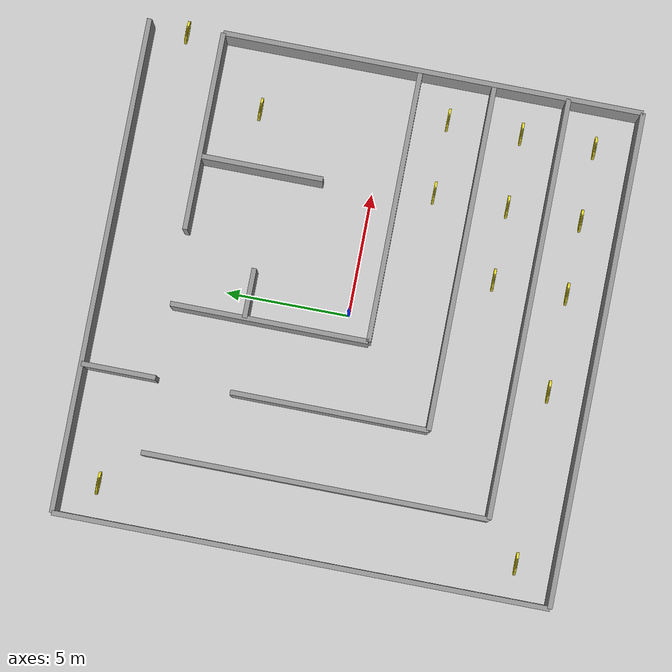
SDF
<?xml version="1.0" ?>
<sdf version="1.4">
  <world name="maze">
    <physics type="ode">
      <gravity>0 0 -9.81</gravity>
      <ode>
        <solver>
          <type>quick</type>
          <iters>50</iters>
          <sor>1.4</sor>
        </solver>
        <constraints>
          <cfm>0.0</cfm>
          <erp>0.2</erp>
          <contact_max_correcting_vel>100.0</contact_max_correcting_vel>
          <contact_surface_layer>0.0</contact_surface_layer>
        </constraints>
      </ode>
      <real_time_update_rate>1000</real_time_update_rate>
      <max_step_size>0.001</max_step_size>
    </physics>
    <scene>
      <ambient>0.3 0.3 0.3 1.0</ambient>
    </scene>
    <!-- Focus camera on the maze -->
    <gui fullscreen='0'>
      <camera name='user_camera'>
        <pose>0 0 35 0 1.570796327 0</pose>
        <view_controller>orbit</view_controller>
      </camera>
    </gui>
    <!-- Light Source -->
    <light type="directional" name="sun">
      <cast_shadows>true</cast_shadows>
      <pose>0 0 100 0 0 0</pose>
      <diffuse>0.9 0.9 0.9 1</diffuse>
      <specular>0.1 0.1 0.1 1</specular>
      <attenuation>
        <range>1000</range>
        <constant>0.9</constant>
        <linear>0.01</linear>
        <quadratic>0.001</quadratic>
      </attenuation>
      <direction>-0.2 0.0 -1.0</direction>
    </light>
    <!-- Point Light Source -->
    <light type="point" name="light_bulb">
      <cast_shadows>false</cast_shadows>
      <pose>0 0 10 0 0 0</pose>
      <diffuse>0.5 0.5 0.5 1</diffuse>
      <specular>0.0 0.0 0.0 1</specular>
      <attenuation>
        <range>80</range>
        <constant>0.9</constant>
        <linear>0.01</linear>
        <quadratic>0.001</quadratic>
      </attenuation>
    </light>
    <!-- A ground plane -->
    <include>
      <uri>model://ground_plane</uri>
      <pose>0 0 0 0 0 0</pose>
    </include>
    <!-- The the maze -->
    <include>
      <uri>model://crazy_maze</uri>
      <pose>0 0 0 0 0 0</pose>
    </include>
    <!-- The coins -->
    <include>
      <uri>model://crazy_coins</uri>
      <pose>0 0 0 0 0 0</pose>
    </include>
  </world>
</sdf>

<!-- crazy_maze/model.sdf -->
<sdf version='1.9'>
  <model name='crazy_maze'>
    <static>1</static>
    <link name='Wall_0'>
      <pose>-10 -10 0 0 0 1.570796327</pose>
      <collision name='Wall_0_Collision'>
        <pose>10 0 1.25 0 0 0</pose>
        <geometry>
          <box>
            <size>20 0.2 2.5</size>
          </box>
        </geometry>
      </collision>
      <visual name='Wall_0_Visual'>
        <pose>10 0 1.25 0 0 0</pose>
        <geometry>
          <box>
            <size>20 0.2 2.5</size>
          </box>
        </geometry>
        <material>
          <script>
            <uri>file://media/materials/scripts/gazebo.material</uri>
            <name>Gazebo/Grey</name>
          </script>
        </material>
      </visual>
    </link>

    <link name='Wall_1'>
      <pose>-10 -10 0 0 0 0</pose>
      <collision name='Wall_1_Collision'>
        <pose>10 0 1.25 0 0 0</pose>
        <geometry>
          <box>
            <size>20 0.2 2.5</size>
          </box>
        </geometry>
      </collision>
      <visual name='Wall_1_Visual'>
        <pose>10 0 1.25 0 0 0</pose>
        <geometry>
          <box>
            <size>20 0.2 2.5</size>
          </box>
        </geometry>
        <material>
          <script>
            <uri>file://media/materials/scripts/gazebo.material</uri>
            <name>Gazebo/Grey</name>
          </script>
        </material>
      </visual>
    </link>

    <link name='Wall_2'>
      <pose>10 -10 0 0 0 1.570796327</pose>
      <collision name='Wall_2_Collision'>
        <pose>8.5 0 1.25 0 0 0</pose>
        <geometry>
          <box>
            <size>17 0.2 2.5</size>
          </box>
        </geometry>
      </collision>
      <visual name='Wall_2_Visual'>
        <pose>8.5 0 1.25 0 0 0</pose>
        <geometry>
          <box>
            <size>17 0.2 2.5</size>
          </box>
        </geometry>
        <material>
          <script>
            <uri>file://media/materials/scripts/gazebo.material</uri>
            <name>Gazebo/Grey</name>
          </script>
        </material>
      </visual>
    </link>

    <link name='Wall_3'>
      <pose>-10 10 0 0 0 0</pose>
      <collision name='Wall_3_Collision'>
        <pose>10 0 1.25 0 0 0</pose>
        <geometry>
          <box>
            <size>20 0.2 2.5</size>
          </box>
        </geometry>
      </collision>
      <visual name='Wall_3_Visual'>
        <pose>10 0 1.25 0 0 0</pose>
        <geometry>
          <box>
            <size>20 0.2 2.5</size>
          </box>
        </geometry>
        <material>
          <script>
            <uri>file://media/materials/scripts/gazebo.material</uri>
            <name>Gazebo/Grey</name>
          </script>
        </material>
      </visual>
    </link>

    <link name='Wall_4'>
      <pose>-7 -7 0 0 0 0</pose>
      <collision name='Wall_4_Collision'>
        <pose>8.5 0 1.25 0 0 0</pose>
        <geometry>
          <box>
            <size>17 0.2 2.5</size>
          </box>
        </geometry>
      </collision>
      <visual name='Wall_4_Visual'>
        <pose>8.5 0 1.25 0 0 0</pose>
        <geometry>
          <box>
            <size>17 0.2 2.5</size>
          </box>
        </geometry>
        <material>
          <script>
            <uri>file://media/materials/scripts/gazebo.material</uri>
            <name>Gazebo/Grey</name>
          </script>
        </material>
      </visual>
    </link>

    <link name='Wall_5'>
      <pose>-7 -7 0 0 0 1.570796327</pose>
      <collision name='Wall_5_Collision'>
        <pose>7 0 1.25 0 0 0</pose>
        <geometry>
          <box>
            <size>14 0.2 2.5</size>
          </box>
        </geometry>
      </collision>
      <visual name='Wall_5_Visual'>
        <pose>7 0 1.25 0 0 0</pose>
        <geometry>
          <box>
            <size>14 0.2 2.5</size>
          </box>
        </geometry>
        <material>
          <script>
            <uri>file://media/materials/scripts/gazebo.material</uri>
            <name>Gazebo/Grey</name>
          </script>
        </material>
      </visual>
    </link>

    <link name='Wall_6'>
      <pose>-4 -4 0 0 0 0</pose>
      <collision name='Wall_6_Collision'>
        <pose>7 0 1.25 0 0 0</pose>
        <geometry>
          <box>
            <size>14 0.2 2.5</size>
          </box>
        </geometry>
      </collision>
      <visual name='Wall_6_Visual'>
        <pose>7 0 1.25 0 0 0</pose>
        <geometry>
          <box>
            <size>14 0.2 2.5</size>
          </box>
        </geometry>
        <material>
          <script>
            <uri>file://media/materials/scripts/gazebo.material</uri>
            <name>Gazebo/Grey</name>
          </script>
        </material>
      </visual>
    </link>

    <link name='Wall_7'>
      <pose>-4 -4 0 0 0 1.570796327</pose>
      <collision name='Wall_7_Collision'>
        <pose>4 0 1.25 0 0 0</pose>
        <geometry>
          <box>
            <size>8 0.2 2.5</size>
          </box>
        </geometry>
      </collision>
      <visual name='Wall_7_Visual'>
        <pose>4 0 1.25 0 0 0</pose>
        <geometry>
          <box>
            <size>8 0.2 2.5</size>
          </box>
        </geometry>
        <material>
          <script>
            <uri>file://media/materials/scripts/gazebo.material</uri>
            <name>Gazebo/Grey</name>
          </script>
        </material>
      </visual>
    </link>

    <link name='Wall_8'>
      <pose>-1 -1 0 0 0 0</pose>
      <collision name='Wall_8_Collision'>
        <pose>5.5 0 1.25 0 0 0</pose>
        <geometry>
          <box>
            <size>11 0.2 2.5</size>
          </box>
        </geometry>
      </collision>
      <visual name='Wall_8_Visual'>
        <pose>5.5 0 1.25 0 0 0</pose>
        <geometry>
          <box>
            <size>11 0.2 2.5</size>
          </box>
        </geometry>
        <material>
          <script>
            <uri>file://media/materials/scripts/gazebo.material</uri>
            <name>Gazebo/Grey</name>
          </script>
        </material>
      </visual>
    </link>

    <link name='Wall_9'>
      <pose>-1 -1 0 0 0 1.570796327</pose>
      <collision name='Wall_9_Collision'>
        <pose>4 0 1.25 0 0 0</pose>
        <geometry>
          <box>
            <size>8 0.2 2.5</size>
          </box>
        </geometry>
      </collision>
      <visual name='Wall_9_Visual'>
        <pose>4 0 1.25 0 0 0</pose>
        <geometry>
          <box>
            <size>8 0.2 2.5</size>
          </box>
        </geometry>
        <material>
          <script>
            <uri>file://media/materials/scripts/gazebo.material</uri>
            <name>Gazebo/Grey</name>
          </script>
        </material>
      </visual>
    </link>

    <link name='Wall_10'>
      <pose>-4 7 0 0 0 1.570796327</pose>
      <collision name='Wall_10_Collision'>
        <pose>1.5 0 1.25 0 0 0</pose>
        <geometry>
          <box>
            <size>3 0.2 2.5</size>
          </box>
        </geometry>
      </collision>
      <visual name='Wall_10_Visual'>
        <pose>1.5 0 1.25 0 0 0</pose>
        <geometry>
          <box>
            <size>3 0.2 2.5</size>
          </box>
        </geometry>
        <material>
          <script>
            <uri>file://media/materials/scripts/gazebo.material</uri>
            <name>Gazebo/Grey</name>
          </script>
        </material>
      </visual>
    </link>

    <link name='Wall_11'>
      <pose>-1 4 0 0 0 0</pose>
      <collision name='Wall_11_Collision'>
        <pose>1 0 1.25 0 0 0</pose>
        <geometry>
          <box>
            <size>2 0.2 2.5</size>
          </box>
        </geometry>
      </collision>
      <visual name='Wall_11_Visual'>
        <pose>1 0 1.25 0 0 0</pose>
        <geometry>
          <box>
            <size>2 0.2 2.5</size>
          </box>
        </geometry>
        <material>
          <script>
            <uri>file://media/materials/scripts/gazebo.material</uri>
            <name>Gazebo/Grey</name>
          </script>
        </material>
      </visual>
    </link>

    <link name='Wall_12'>
      <pose>2 7 0 0 0 0</pose>
      <collision name='Wall_12_Collision'>
        <pose>4 0 1.25 0 0 0</pose>
        <geometry>
          <box>
            <size>8 0.2 2.5</size>
          </box>
        </geometry>
      </collision>
      <visual name='Wall_12_Visual'>
        <pose>4 0 1.25 0 0 0</pose>
        <geometry>
          <box>
            <size>8 0.2 2.5</size>
          </box>
        </geometry>
        <material>
          <script>
            <uri>file://media/materials/scripts/gazebo.material</uri>
            <name>Gazebo/Grey</name>
          </script>
        </material>
      </visual>
    </link>

    <link name='Wall_13'>
      <pose>5 2 0 0 0 1.570796327</pose>
      <collision name='Wall_13_Collision'>
        <pose>2.5 0 1.25 0 0 0</pose>
        <geometry>
          <box>
            <size>5 0.2 2.5</size>
          </box>
        </geometry>
      </collision>
      <visual name='Wall_13_Visual'>
        <pose>2.5 0 1.25 0 0 0</pose>
        <geometry>
          <box>
            <size>5 0.2 2.5</size>
          </box>
        </geometry>
        <material>
          <script>
            <uri>file://media/materials/scripts/gazebo.material</uri>
            <name>Gazebo/Grey</name>
          </script>
        </material>
      </visual>
    </link>

  </model>
</sdf>

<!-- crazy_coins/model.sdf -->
<!-- Only put coins in this model. All the links will spin -->
<sdf version='1.4'>
  <model name='crazy_coins'>
    <static>0</static>

    <link name='coin_1'>
      <pose>7.5 5 0.6 0 0 0</pose>
      <gravity>0</gravity>
      <visual name='coin_1_Visual'>
        <pose>0 0 0 0 0 0</pose>
        <geometry>
          <mesh>
            <uri>model://crazy_coins/meshes/coin.dae</uri>
            <scale>0.4 0.4 0.4</scale>
          </mesh>
        </geometry>
        <material>
          <script>
            <uri>file://media/materials/scripts/gazebo.material</uri>
            <name>Gazebo/Yellow</name>
          </script>
        </material>
      </visual>
    </link>

    <link name='coin_2'>
      <gravity>0</gravity>
      <pose>10 8.5 0.6 0 0 0</pose>
      <visual name='coin_2_Visual'>
        <pose>0 0 0 0 0 0</pose>
        <geometry>
          <mesh>
            <uri>model://crazy_coins/meshes/coin.dae</uri>
            <scale>0.4 0.4 0.4</scale>
          </mesh>
        </geometry>
        <material>
          <script>
            <uri>file://media/materials/scripts/gazebo.material</uri>
            <name>Gazebo/Yellow</name>
          </script>
        </material>
      </visual>
    </link>

    <link name='coin_3'>
      <gravity>0</gravity>
      <pose>-8.5 8.5 0.6 0 0 0</pose>
      <visual name='coin_3_Visual'>
        <pose>0 0 0 0 0 0</pose>
        <geometry>
          <mesh>
            <uri>model://crazy_coins/meshes/coin.dae</uri>
            <scale>0.4 0.4 0.4</scale>
          </mesh>
        </geometry>
        <material>
          <script>
            <uri>file://media/materials/scripts/gazebo.material</uri>
            <name>Gazebo/Yellow</name>
          </script>
        </material>
      </visual>
    </link>

    <link name='coin_4'>
      <gravity>0</gravity>
      <pose>8.5 -8.5 0.6 0 0 0</pose>
      <visual name='coin_4_Visual'>
        <pose>0 0 0 0 0 0</pose>
        <geometry>
          <mesh>
            <uri>model://crazy_coins/meshes/coin.dae</uri>
            <scale>0.4 0.4 0.4</scale>
          </mesh>
        </geometry>
        <material>
          <script>
            <uri>file://media/materials/scripts/gazebo.material</uri>
            <name>Gazebo/Yellow</name>
          </script>
        </material>
      </visual>
    </link>

    <link name='coin_5'>
      <gravity>0</gravity>
      <pose>-8.5 -8.5 0.6 0 0 0</pose>
      <visual name='coin_5_Visual'>
        <pose>0 0 0 0 0 0</pose>
        <geometry>
          <mesh>
            <uri>model://crazy_coins/meshes/coin.dae</uri>
            <scale>0.4 0.4 0.4</scale>
          </mesh>
        </geometry>
        <material>
          <script>
            <uri>file://media/materials/scripts/gazebo.material</uri>
            <name>Gazebo/Yellow</name>
          </script>
        </material>
      </visual>
    </link>

    <link name='coin_6'>
      <gravity>0</gravity>
      <pose>5.5 -8.5 0.6 0 0 0</pose>
      <visual name='coin_6_Visual'>
        <pose>0 0 0 0 0 0</pose>
        <geometry>
          <mesh>
            <uri>model://crazy_coins/meshes/coin.dae</uri>
            <scale>0.4 0.4 0.4</scale>
          </mesh>
        </geometry>
        <material>
          <script>
            <uri>file://media/materials/scripts/gazebo.material</uri>
            <name>Gazebo/Yellow</name>
          </script>
        </material>
      </visual>
    </link>

    <link name='coin_7'>
      <gravity>0</gravity>
      <pose>2.5 -8.5 0.6 0 0 0</pose>
      <visual name='coin_7_Visual'>
        <pose>0 0 0 0 0 0</pose>
        <geometry>
          <mesh>
            <uri>model://crazy_coins/meshes/coin.dae</uri>
            <scale>0.4 0.4 0.4</scale>
          </mesh>
        </geometry>
        <material>
          <script>
            <uri>file://media/materials/scripts/gazebo.material</uri>
            <name>Gazebo/Yellow</name>
          </script>
        </material>
      </visual>
    </link>

    <link name='coin_8'>
      <gravity>0</gravity>
      <pose>-1.5 -8.5 0.6 0 0 0</pose>
      <visual name='coin_8_Visual'>
        <pose>0 0 0 0 0 0</pose>
        <geometry>
          <mesh>
            <uri>model://crazy_coins/meshes/coin.dae</uri>
            <scale>0.4 0.4 0.4</scale>
          </mesh>
        </geometry>
        <material>
          <script>
            <uri>file://media/materials/scripts/gazebo.material</uri>
            <name>Gazebo/Yellow</name>
          </script>
        </material>
      </visual>
    </link>

    <link name='coin_9'>
      <gravity>0</gravity>
      <pose>8.5 -5.5 0.6 0 0 0</pose>
      <visual name='coin_9_Visual'>
        <pose>0 0 0 0 0 0</pose>
        <geometry>
          <mesh>
            <uri>model://crazy_coins/meshes/coin.dae</uri>
            <scale>0.4 0.4 0.4</scale>
          </mesh>
        </geometry>
        <material>
          <script>
            <uri>file://media/materials/scripts/gazebo.material</uri>
            <name>Gazebo/Yellow</name>
          </script>
        </material>
      </visual>
    </link>

    <link name='coin_10'>
      <gravity>0</gravity>
      <pose>8.5 -2.5 0.6 0 0 0</pose>
      <visual name='coin_10_Visual'>
        <pose>0 0 0 0 0 0</pose>
        <geometry>
          <mesh>
            <uri>model://crazy_coins/meshes/coin.dae</uri>
            <scale>0.4 0.4 0.4</scale>
          </mesh>
        </geometry>
        <material>
          <script>
            <uri>file://media/materials/scripts/gazebo.material</uri>
            <name>Gazebo/Yellow</name>
          </script>
        </material>
      </visual>
    </link>

    <link name='coin_11'>
      <gravity>0</gravity>
      <pose>5.5 -5.5 0.6 0 0 0</pose>
      <visual name='coin_11_Visual'>
        <pose>0 0 0 0 0 0</pose>
        <geometry>
          <mesh>
            <uri>model://crazy_coins/meshes/coin.dae</uri>
            <scale>0.4 0.4 0.4</scale>
          </mesh>
        </geometry>
        <material>
          <script>
            <uri>file://media/materials/scripts/gazebo.material</uri>
            <name>Gazebo/Yellow</name>
          </script>
        </material>
      </visual>
    </link>

    <link name='coin_12'>
      <gravity>0</gravity>
      <pose>2.5 -5.5 0.6 0 0 0</pose>
      <visual name='coin_12_Visual'>
        <pose>0 0 0 0 0 0</pose>
        <geometry>
          <mesh>
            <uri>model://crazy_coins/meshes/coin.dae</uri>
            <scale>0.4 0.4 0.4</scale>
          </mesh>
        </geometry>
        <material>
          <script>
            <uri>file://media/materials/scripts/gazebo.material</uri>
            <name>Gazebo/Yellow</name>
          </script>
        </material>
      </visual>
    </link>

    <link name='coin_13'>
      <gravity>0</gravity>
      <pose>5.5 -2.5 0.6 0 0 0</pose>
      <visual name='coin_13_Visual'>
        <pose>0 0 0 0 0 0</pose>
        <geometry>
          <mesh>
            <uri>model://crazy_coins/meshes/coin.dae</uri>
            <scale>0.4 0.4 0.4</scale>
          </mesh>
        </geometry>
        <material>
          <script>
            <uri>file://media/materials/scripts/gazebo.material</uri>
            <name>Gazebo/Yellow</name>
          </script>
        </material>
      </visual>
    </link>

    <plugin name="coins_manager_plugin" filename="libcoins_manager_plugin.so" >
      <goal_coin>coin_2</goal_coin>
      <robot_name>labrob</robot_name>
      <update_rate>1.0</update_rate>
      <spin_velocity>1.570796327</spin_velocity>
    </plugin>

  </model>
</sdf>
